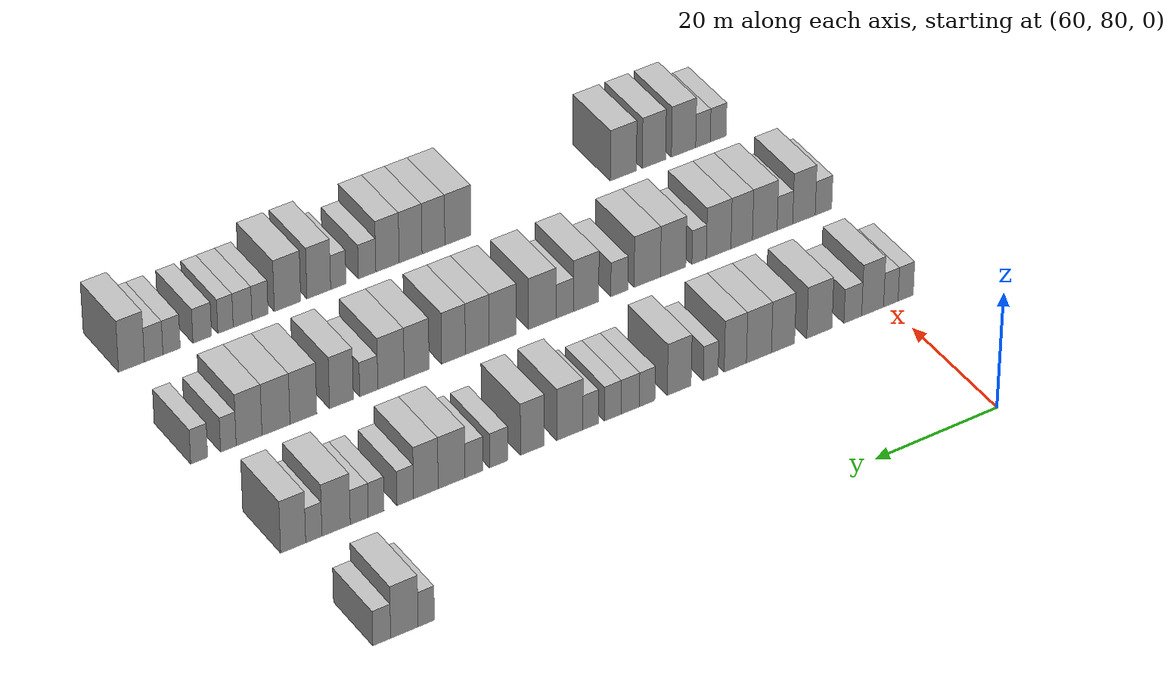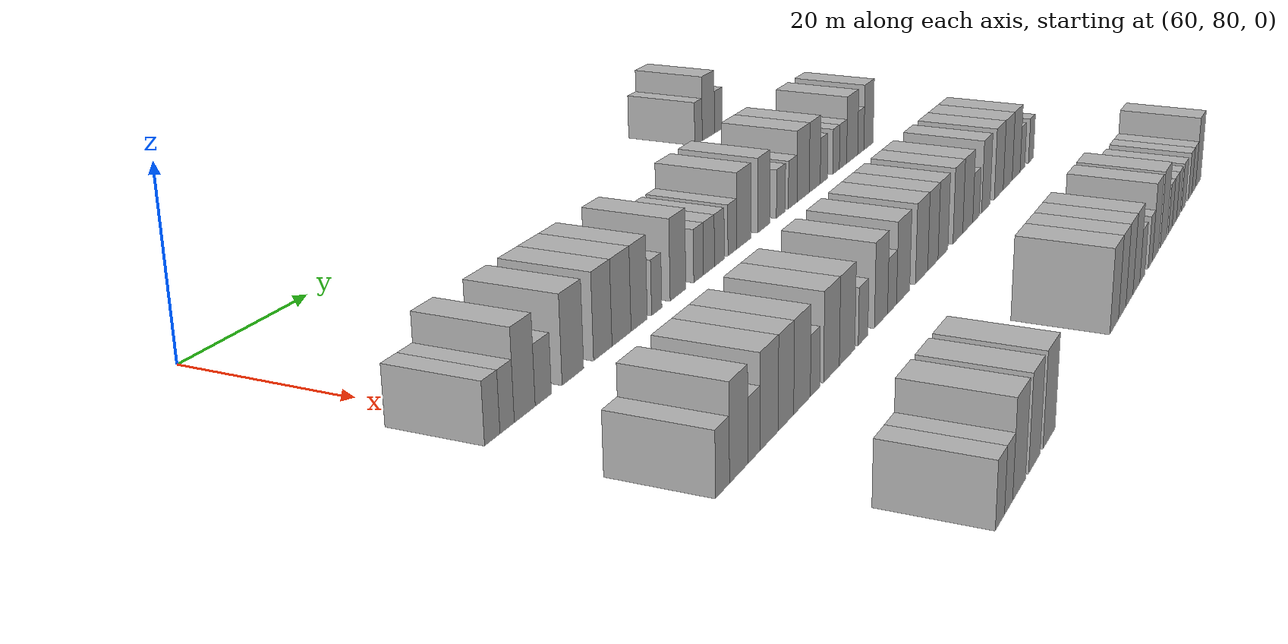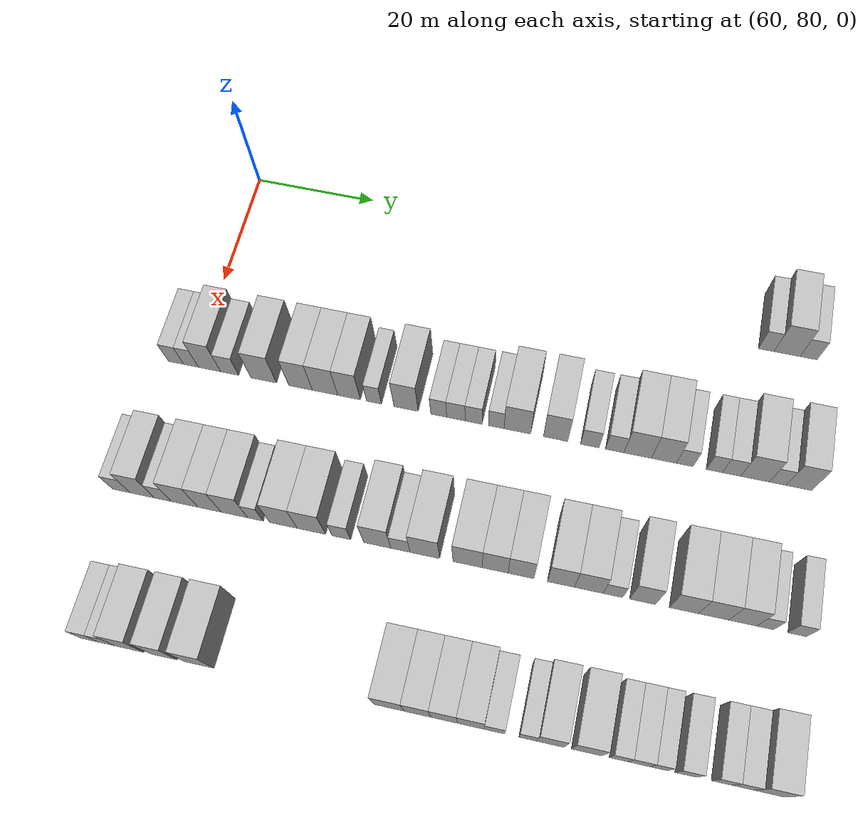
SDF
<sdf version="1.6">
 <world name="default">
  <model name="building_527">
   <static>1</static>
   <pose>69.0000 168.3057 0 0.000000 0.000000 0.000000</pose>
   <link name="link">
    <pose>0 0 3.00 0 0 0</pose>
    <collision name="collision"><geometry><box><size>10.0000 2.4869 6.0000</size></box></geometry></collision>
    <visual name="visual">
     <cast_shadows>0</cast_shadows>
     <geometry><box><size>10.0000 2.4869 6.0000</size></box></geometry>
     <material>
      <script>
       <uri>model://HANNAS_wall/materials/scripts</uri>
       <uri>model://HANNAS_wall/materials/textures</uri>
       <name>vrc/HANNAS_wall</name>
      </script>
     </material>
    </visual>
   </link>
  </model>
  <model name="building_528">
   <static>1</static>
   <pose>69.0000 171.6287 0 0.000000 0.000000 0.000000</pose>
   <link name="link">
    <pose>0 0 4.50 0 0 0</pose>
    <collision name="collision"><geometry><box><size>10.0000 4.1592 9.0000</size></box></geometry></collision>
    <visual name="visual">
     <cast_shadows>0</cast_shadows>
     <geometry><box><size>10.0000 4.1592 9.0000</size></box></geometry>
     <material>
      <script>
       <uri>model://HANNAS_wall/materials/scripts</uri>
       <uri>model://HANNAS_wall/materials/textures</uri>
       <name>vrc/HANNAS_wall</name>
      </script>
     </material>
    </visual>
   </link>
  </model>
  <model name="building_529">
   <static>1</static>
   <pose>69.0000 175.0570 0 0.000000 0.000000 0.000000</pose>
   <link name="link">
    <pose>0 0 3.00 0 0 0</pose>
    <collision name="collision"><geometry><box><size>10.0000 2.6973 6.0000</size></box></geometry></collision>
    <visual name="visual">
     <cast_shadows>0</cast_shadows>
     <geometry><box><size>10.0000 2.6973 6.0000</size></box></geometry>
     <material>
      <script>
       <uri>model://HANNAS_wall/materials/scripts</uri>
       <uri>model://HANNAS_wall/materials/textures</uri>
       <name>vrc/HANNAS_wall</name>
      </script>
     </material>
    </visual>
   </link>
  </model>
  <model name="building_686">
   <static>1</static>
   <pose>91.0000 77.1008 0 0.000000 0.000000 0.000000</pose>
   <link name="link">
    <pose>0 0 3.00 0 0 0</pose>
    <collision name="collision"><geometry><box><size>10.0000 2.5557 6.0000</size></box></geometry></collision>
    <visual name="visual">
     <cast_shadows>0</cast_shadows>
     <geometry><box><size>10.0000 2.5557 6.0000</size></box></geometry>
     <material>
      <script>
       <uri>model://HANNAS_wall/materials/scripts</uri>
       <uri>model://HANNAS_wall/materials/textures</uri>
       <name>vrc/HANNAS_wall</name>
      </script>
     </material>
    </visual>
   </link>
  </model>
  <model name="building_687">
   <static>1</static>
   <pose>91.0000 79.5977 0 0.000000 0.000000 0.000000</pose>
   <link name="link">
    <pose>0 0 3.00 0 0 0</pose>
    <collision name="collision"><geometry><box><size>10.0000 2.4380 6.0000</size></box></geometry></collision>
    <visual name="visual">
     <cast_shadows>0</cast_shadows>
     <geometry><box><size>10.0000 2.4380 6.0000</size></box></geometry>
     <material>
      <script>
       <uri>model://HANNAS_wall/materials/scripts</uri>
       <uri>model://HANNAS_wall/materials/textures</uri>
       <name>vrc/HANNAS_wall</name>
      </script>
     </material>
    </visual>
   </link>
  </model>
  <model name="building_688">
   <static>1</static>
   <pose>91.0000 82.6555 0 0.000000 0.000000 0.000000</pose>
   <link name="link">
    <pose>0 0 4.50 0 0 0</pose>
    <collision name="collision"><geometry><box><size>10.0000 3.6777 9.0000</size></box></geometry></collision>
    <visual name="visual">
     <cast_shadows>0</cast_shadows>
     <geometry><box><size>10.0000 3.6777 9.0000</size></box></geometry>
     <material>
      <script>
       <uri>model://HANNAS_wall/materials/scripts</uri>
       <uri>model://HANNAS_wall/materials/textures</uri>
       <name>vrc/HANNAS_wall</name>
      </script>
     </material>
    </visual>
   </link>
  </model>
  <model name="building_689">
   <static>1</static>
   <pose>91.0000 85.9803 0 0.000000 0.000000 0.000000</pose>
   <link name="link">
    <pose>0 0 3.00 0 0 0</pose>
    <collision name="collision"><geometry><box><size>10.0000 2.9718 6.0000</size></box></geometry></collision>
    <visual name="visual">
     <cast_shadows>0</cast_shadows>
     <geometry><box><size>10.0000 2.9718 6.0000</size></box></geometry>
     <material>
      <script>
       <uri>model://HANNAS_wall/materials/scripts</uri>
       <uri>model://HANNAS_wall/materials/textures</uri>
       <name>vrc/HANNAS_wall</name>
      </script>
     </material>
    </visual>
   </link>
  </model>
  <model name="building_690">
   <static>1</static>
   <pose>91.0000 91.5676 0 0.000000 0.000000 0.000000</pose>
   <link name="link">
    <pose>0 0 4.50 0 0 0</pose>
    <collision name="collision"><geometry><box><size>10.0000 4.2027 9.0000</size></box></geometry></collision>
    <visual name="visual">
     <cast_shadows>0</cast_shadows>
     <geometry><box><size>10.0000 4.2027 9.0000</size></box></geometry>
     <material>
      <script>
       <uri>model://HANNAS_wall/materials/scripts</uri>
       <uri>model://HANNAS_wall/materials/textures</uri>
       <name>vrc/HANNAS_wall</name>
      </script>
     </material>
    </visual>
   </link>
  </model>
  <model name="building_691">
   <static>1</static>
   <pose>91.0000 97.5886 0 0.000000 0.000000 0.000000</pose>
   <link name="link">
    <pose>0 0 4.50 0 0 0</pose>
    <collision name="collision"><geometry><box><size>10.0000 3.8395 9.0000</size></box></geometry></collision>
    <visual name="visual">
     <cast_shadows>0</cast_shadows>
     <geometry><box><size>10.0000 3.8395 9.0000</size></box></geometry>
     <material>
      <script>
       <uri>model://HANNAS_wall/materials/scripts</uri>
       <uri>model://HANNAS_wall/materials/textures</uri>
       <name>vrc/HANNAS_wall</name>
      </script>
     </material>
    </visual>
   </link>
  </model>
  <model name="building_692">
   <static>1</static>
   <pose>91.0000 101.5713 0 0.000000 0.000000 0.000000</pose>
   <link name="link">
    <pose>0 0 4.50 0 0 0</pose>
    <collision name="collision"><geometry><box><size>10.0000 4.1258 9.0000</size></box></geometry></collision>
    <visual name="visual">
     <cast_shadows>0</cast_shadows>
     <geometry><box><size>10.0000 4.1258 9.0000</size></box></geometry>
     <material>
      <script>
       <uri>model://HANNAS_wall/materials/scripts</uri>
       <uri>model://HANNAS_wall/materials/textures</uri>
       <name>vrc/HANNAS_wall</name>
      </script>
     </material>
    </visual>
   </link>
  </model>
  <model name="building_693">
   <static>1</static>
   <pose>91.0000 105.4553 0 0.000000 0.000000 0.000000</pose>
   <link name="link">
    <pose>0 0 4.50 0 0 0</pose>
    <collision name="collision"><geometry><box><size>10.0000 3.6424 9.0000</size></box></geometry></collision>
    <visual name="visual">
     <cast_shadows>0</cast_shadows>
     <geometry><box><size>10.0000 3.6424 9.0000</size></box></geometry>
     <material>
      <script>
       <uri>model://HANNAS_wall/materials/scripts</uri>
       <uri>model://HANNAS_wall/materials/textures</uri>
       <name>vrc/HANNAS_wall</name>
      </script>
     </material>
    </visual>
   </link>
  </model>
  <model name="building_694">
   <static>1</static>
   <pose>91.0000 109.4793 0 0.000000 0.000000 0.000000</pose>
   <link name="link">
    <pose>0 0 3.00 0 0 0</pose>
    <collision name="collision"><geometry><box><size>10.0000 2.4055 6.0000</size></box></geometry></collision>
    <visual name="visual">
     <cast_shadows>0</cast_shadows>
     <geometry><box><size>10.0000 2.4055 6.0000</size></box></geometry>
     <material>
      <script>
       <uri>model://HANNAS_wall/materials/scripts</uri>
       <uri>model://HANNAS_wall/materials/textures</uri>
       <name>vrc/HANNAS_wall</name>
      </script>
     </material>
    </visual>
   </link>
  </model>
  <model name="building_695">
   <static>1</static>
   <pose>91.0000 114.6203 0 0.000000 0.000000 0.000000</pose>
   <link name="link">
    <pose>0 0 4.50 0 0 0</pose>
    <collision name="collision"><geometry><box><size>10.0000 3.8765 9.0000</size></box></geometry></collision>
    <visual name="visual">
     <cast_shadows>0</cast_shadows>
     <geometry><box><size>10.0000 3.8765 9.0000</size></box></geometry>
     <material>
      <script>
       <uri>model://HANNAS_wall/materials/scripts</uri>
       <uri>model://HANNAS_wall/materials/textures</uri>
       <name>vrc/HANNAS_wall</name>
      </script>
     </material>
    </visual>
   </link>
  </model>
  <model name="building_696">
   <static>1</static>
   <pose>91.0000 119.8176 0 0.000000 0.000000 0.000000</pose>
   <link name="link">
    <pose>0 0 3.00 0 0 0</pose>
    <collision name="collision"><geometry><box><size>10.0000 2.5181 6.0000</size></box></geometry></collision>
    <visual name="visual">
     <cast_shadows>0</cast_shadows>
     <geometry><box><size>10.0000 2.5181 6.0000</size></box></geometry>
     <material>
      <script>
       <uri>model://HANNAS_wall/materials/scripts</uri>
       <uri>model://HANNAS_wall/materials/textures</uri>
       <name>vrc/HANNAS_wall</name>
      </script>
     </material>
    </visual>
   </link>
  </model>
  <model name="building_697">
   <static>1</static>
   <pose>91.0000 122.5498 0 0.000000 0.000000 0.000000</pose>
   <link name="link">
    <pose>0 0 3.00 0 0 0</pose>
    <collision name="collision"><geometry><box><size>10.0000 2.9464 6.0000</size></box></geometry></collision>
    <visual name="visual">
     <cast_shadows>0</cast_shadows>
     <geometry><box><size>10.0000 2.9464 6.0000</size></box></geometry>
     <material>
      <script>
       <uri>model://HANNAS_wall/materials/scripts</uri>
       <uri>model://HANNAS_wall/materials/textures</uri>
       <name>vrc/HANNAS_wall</name>
      </script>
     </material>
    </visual>
   </link>
  </model>
  <model name="building_698">
   <static>1</static>
   <pose>91.0000 125.3629 0 0.000000 0.000000 0.000000</pose>
   <link name="link">
    <pose>0 0 3.00 0 0 0</pose>
    <collision name="collision"><geometry><box><size>10.0000 2.6797 6.0000</size></box></geometry></collision>
    <visual name="visual">
     <cast_shadows>0</cast_shadows>
     <geometry><box><size>10.0000 2.6797 6.0000</size></box></geometry>
     <material>
      <script>
       <uri>model://HANNAS_wall/materials/scripts</uri>
       <uri>model://HANNAS_wall/materials/textures</uri>
       <name>vrc/HANNAS_wall</name>
      </script>
     </material>
    </visual>
   </link>
  </model>
  <model name="building_699">
   <static>1</static>
   <pose>91.0000 128.9342 0 0.000000 0.000000 0.000000</pose>
   <link name="link">
    <pose>0 0 3.00 0 0 0</pose>
    <collision name="collision"><geometry><box><size>10.0000 2.4628 6.0000</size></box></geometry></collision>
    <visual name="visual">
     <cast_shadows>0</cast_shadows>
     <geometry><box><size>10.0000 2.4628 6.0000</size></box></geometry>
     <material>
      <script>
       <uri>model://HANNAS_wall/materials/scripts</uri>
       <uri>model://HANNAS_wall/materials/textures</uri>
       <name>vrc/HANNAS_wall</name>
      </script>
     </material>
    </visual>
   </link>
  </model>
  <model name="building_700">
   <static>1</static>
   <pose>91.0000 132.2552 0 0.000000 0.000000 0.000000</pose>
   <link name="link">
    <pose>0 0 4.50 0 0 0</pose>
    <collision name="collision"><geometry><box><size>10.0000 4.1792 9.0000</size></box></geometry></collision>
    <visual name="visual">
     <cast_shadows>0</cast_shadows>
     <geometry><box><size>10.0000 4.1792 9.0000</size></box></geometry>
     <material>
      <script>
       <uri>model://HANNAS_wall/materials/scripts</uri>
       <uri>model://HANNAS_wall/materials/textures</uri>
       <name>vrc/HANNAS_wall</name>
      </script>
     </material>
    </visual>
   </link>
  </model>
  <model name="building_701">
   <static>1</static>
   <pose>91.0000 138.2323 0 0.000000 0.000000 0.000000</pose>
   <link name="link">
    <pose>0 0 4.50 0 0 0</pose>
    <collision name="collision"><geometry><box><size>10.0000 3.7750 9.0000</size></box></geometry></collision>
    <visual name="visual">
     <cast_shadows>0</cast_shadows>
     <geometry><box><size>10.0000 3.7750 9.0000</size></box></geometry>
     <material>
      <script>
       <uri>model://HANNAS_wall/materials/scripts</uri>
       <uri>model://HANNAS_wall/materials/textures</uri>
       <name>vrc/HANNAS_wall</name>
      </script>
     </material>
    </visual>
   </link>
  </model>
  <model name="building_702">
   <static>1</static>
   <pose>91.0000 143.5589 0 0.000000 0.000000 0.000000</pose>
   <link name="link">
    <pose>0 0 3.00 0 0 0</pose>
    <collision name="collision"><geometry><box><size>10.0000 2.8782 6.0000</size></box></geometry></collision>
    <visual name="visual">
     <cast_shadows>0</cast_shadows>
     <geometry><box><size>10.0000 2.8782 6.0000</size></box></geometry>
     <material>
      <script>
       <uri>model://HANNAS_wall/materials/scripts</uri>
       <uri>model://HANNAS_wall/materials/textures</uri>
       <name>vrc/HANNAS_wall</name>
      </script>
     </material>
    </visual>
   </link>
  </model>
  <model name="building_703">
   <static>1</static>
   <pose>91.0000 147.4248 0 0.000000 0.000000 0.000000</pose>
   <link name="link">
    <pose>0 0 3.00 0 0 0</pose>
    <collision name="collision"><geometry><box><size>10.0000 2.8537 6.0000</size></box></geometry></collision>
    <visual name="visual">
     <cast_shadows>0</cast_shadows>
     <geometry><box><size>10.0000 2.8537 6.0000</size></box></geometry>
     <material>
      <script>
       <uri>model://HANNAS_wall/materials/scripts</uri>
       <uri>model://HANNAS_wall/materials/textures</uri>
       <name>vrc/HANNAS_wall</name>
      </script>
     </material>
    </visual>
   </link>
  </model>
  <model name="building_704">
   <static>1</static>
   <pose>91.0000 150.9583 0 0.000000 0.000000 0.000000</pose>
   <link name="link">
    <pose>0 0 4.50 0 0 0</pose>
    <collision name="collision"><geometry><box><size>10.0000 4.2132 9.0000</size></box></geometry></collision>
    <visual name="visual">
     <cast_shadows>0</cast_shadows>
     <geometry><box><size>10.0000 4.2132 9.0000</size></box></geometry>
     <material>
      <script>
       <uri>model://HANNAS_wall/materials/scripts</uri>
       <uri>model://HANNAS_wall/materials/textures</uri>
       <name>vrc/HANNAS_wall</name>
      </script>
     </material>
    </visual>
   </link>
  </model>
  <model name="building_705">
   <static>1</static>
   <pose>91.0000 154.9866 0 0.000000 0.000000 0.000000</pose>
   <link name="link">
    <pose>0 0 4.50 0 0 0</pose>
    <collision name="collision"><geometry><box><size>10.0000 3.8434 9.0000</size></box></geometry></collision>
    <visual name="visual">
     <cast_shadows>0</cast_shadows>
     <geometry><box><size>10.0000 3.8434 9.0000</size></box></geometry>
     <material>
      <script>
       <uri>model://HANNAS_wall/materials/scripts</uri>
       <uri>model://HANNAS_wall/materials/textures</uri>
       <name>vrc/HANNAS_wall</name>
      </script>
     </material>
    </visual>
   </link>
  </model>
  <model name="building_706">
   <static>1</static>
   <pose>91.0000 158.1981 0 0.000000 0.000000 0.000000</pose>
   <link name="link">
    <pose>0 0 3.00 0 0 0</pose>
    <collision name="collision"><geometry><box><size>10.0000 2.5796 6.0000</size></box></geometry></collision>
    <visual name="visual">
     <cast_shadows>0</cast_shadows>
     <geometry><box><size>10.0000 2.5796 6.0000</size></box></geometry>
     <material>
      <script>
       <uri>model://HANNAS_wall/materials/scripts</uri>
       <uri>model://HANNAS_wall/materials/textures</uri>
       <name>vrc/HANNAS_wall</name>
      </script>
     </material>
    </visual>
   </link>
  </model>
  <model name="building_707">
   <static>1</static>
   <pose>91.0000 162.7180 0 0.000000 0.000000 0.000000</pose>
   <link name="link">
    <pose>0 0 3.00 0 0 0</pose>
    <collision name="collision"><geometry><box><size>10.0000 2.4602 6.0000</size></box></geometry></collision>
    <visual name="visual">
     <cast_shadows>0</cast_shadows>
     <geometry><box><size>10.0000 2.4602 6.0000</size></box></geometry>
     <material>
      <script>
       <uri>model://HANNAS_wall/materials/scripts</uri>
       <uri>model://HANNAS_wall/materials/textures</uri>
       <name>vrc/HANNAS_wall</name>
      </script>
     </material>
    </visual>
   </link>
  </model>
  <model name="building_708">
   <static>1</static>
   <pose>91.0000 165.3402 0 0.000000 0.000000 0.000000</pose>
   <link name="link">
    <pose>0 0 3.00 0 0 0</pose>
    <collision name="collision"><geometry><box><size>10.0000 2.7844 6.0000</size></box></geometry></collision>
    <visual name="visual">
     <cast_shadows>0</cast_shadows>
     <geometry><box><size>10.0000 2.7844 6.0000</size></box></geometry>
     <material>
      <script>
       <uri>model://HANNAS_wall/materials/scripts</uri>
       <uri>model://HANNAS_wall/materials/textures</uri>
       <name>vrc/HANNAS_wall</name>
      </script>
     </material>
    </visual>
   </link>
  </model>
  <model name="building_709">
   <static>1</static>
   <pose>91.0000 168.9085 0 0.000000 0.000000 0.000000</pose>
   <link name="link">
    <pose>0 0 4.50 0 0 0</pose>
    <collision name="collision"><geometry><box><size>10.0000 4.3522 9.0000</size></box></geometry></collision>
    <visual name="visual">
     <cast_shadows>0</cast_shadows>
     <geometry><box><size>10.0000 4.3522 9.0000</size></box></geometry>
     <material>
      <script>
       <uri>model://HANNAS_wall/materials/scripts</uri>
       <uri>model://HANNAS_wall/materials/textures</uri>
       <name>vrc/HANNAS_wall</name>
      </script>
     </material>
    </visual>
   </link>
  </model>
  <model name="building_710">
   <static>1</static>
   <pose>91.0000 172.3345 0 0.000000 0.000000 0.000000</pose>
   <link name="link">
    <pose>0 0 3.00 0 0 0</pose>
    <collision name="collision"><geometry><box><size>10.0000 2.4998 6.0000</size></box></geometry></collision>
    <visual name="visual">
     <cast_shadows>0</cast_shadows>
     <geometry><box><size>10.0000 2.4998 6.0000</size></box></geometry>
     <material>
      <script>
       <uri>model://HANNAS_wall/materials/scripts</uri>
       <uri>model://HANNAS_wall/materials/textures</uri>
       <name>vrc/HANNAS_wall</name>
      </script>
     </material>
    </visual>
   </link>
  </model>
  <model name="building_711">
   <static>1</static>
   <pose>91.0000 175.5028 0 0.000000 0.000000 0.000000</pose>
   <link name="link">
    <pose>0 0 4.50 0 0 0</pose>
    <collision name="collision"><geometry><box><size>10.0000 3.8369 9.0000</size></box></geometry></collision>
    <visual name="visual">
     <cast_shadows>0</cast_shadows>
     <geometry><box><size>10.0000 3.8369 9.0000</size></box></geometry>
     <material>
      <script>
       <uri>model://HANNAS_wall/materials/scripts</uri>
       <uri>model://HANNAS_wall/materials/textures</uri>
       <name>vrc/HANNAS_wall</name>
      </script>
     </material>
    </visual>
   </link>
  </model>
  <model name="building_876">
   <static>1</static>
   <pose>113.0000 75.9384 0 0.000000 0.000000 0.000000</pose>
   <link name="link">
    <pose>0 0 3.00 0 0 0</pose>
    <collision name="collision"><geometry><box><size>10.0000 2.8120 6.0000</size></box></geometry></collision>
    <visual name="visual">
     <cast_shadows>0</cast_shadows>
     <geometry><box><size>10.0000 2.8120 6.0000</size></box></geometry>
     <material>
      <script>
       <uri>model://HANNAS_wall/materials/scripts</uri>
       <uri>model://HANNAS_wall/materials/textures</uri>
       <name>vrc/HANNAS_wall</name>
      </script>
     </material>
    </visual>
   </link>
  </model>
  <model name="building_877">
   <static>1</static>
   <pose>113.0000 79.2613 0 0.000000 0.000000 0.000000</pose>
   <link name="link">
    <pose>0 0 4.50 0 0 0</pose>
    <collision name="collision"><geometry><box><size>10.0000 3.8337 9.0000</size></box></geometry></collision>
    <visual name="visual">
     <cast_shadows>0</cast_shadows>
     <geometry><box><size>10.0000 3.8337 9.0000</size></box></geometry>
     <material>
      <script>
       <uri>model://HANNAS_wall/materials/scripts</uri>
       <uri>model://HANNAS_wall/materials/textures</uri>
       <name>vrc/HANNAS_wall</name>
      </script>
     </material>
    </visual>
   </link>
  </model>
  <model name="building_878">
   <static>1</static>
   <pose>113.0000 82.4940 0 0.000000 0.000000 0.000000</pose>
   <link name="link">
    <pose>0 0 3.00 0 0 0</pose>
    <collision name="collision"><geometry><box><size>10.0000 2.6317 6.0000</size></box></geometry></collision>
    <visual name="visual">
     <cast_shadows>0</cast_shadows>
     <geometry><box><size>10.0000 2.6317 6.0000</size></box></geometry>
     <material>
      <script>
       <uri>model://HANNAS_wall/materials/scripts</uri>
       <uri>model://HANNAS_wall/materials/textures</uri>
       <name>vrc/HANNAS_wall</name>
      </script>
     </material>
    </visual>
   </link>
  </model>
  <model name="building_879">
   <static>1</static>
   <pose>113.0000 85.8998 0 0.000000 0.000000 0.000000</pose>
   <link name="link">
    <pose>0 0 4.50 0 0 0</pose>
    <collision name="collision"><geometry><box><size>10.0000 4.1800 9.0000</size></box></geometry></collision>
    <visual name="visual">
     <cast_shadows>0</cast_shadows>
     <geometry><box><size>10.0000 4.1800 9.0000</size></box></geometry>
     <material>
      <script>
       <uri>model://HANNAS_wall/materials/scripts</uri>
       <uri>model://HANNAS_wall/materials/textures</uri>
       <name>vrc/HANNAS_wall</name>
      </script>
     </material>
    </visual>
   </link>
  </model>
  <model name="building_880">
   <static>1</static>
   <pose>113.0000 89.7984 0 0.000000 0.000000 0.000000</pose>
   <link name="link">
    <pose>0 0 4.50 0 0 0</pose>
    <collision name="collision"><geometry><box><size>10.0000 3.6172 9.0000</size></box></geometry></collision>
    <visual name="visual">
     <cast_shadows>0</cast_shadows>
     <geometry><box><size>10.0000 3.6172 9.0000</size></box></geometry>
     <material>
      <script>
       <uri>model://HANNAS_wall/materials/scripts</uri>
       <uri>model://HANNAS_wall/materials/textures</uri>
       <name>vrc/HANNAS_wall</name>
      </script>
     </material>
    </visual>
   </link>
  </model>
  <model name="building_881">
   <static>1</static>
   <pose>113.0000 93.6689 0 0.000000 0.000000 0.000000</pose>
   <link name="link">
    <pose>0 0 4.50 0 0 0</pose>
    <collision name="collision"><geometry><box><size>10.0000 4.1239 9.0000</size></box></geometry></collision>
    <visual name="visual">
     <cast_shadows>0</cast_shadows>
     <geometry><box><size>10.0000 4.1239 9.0000</size></box></geometry>
     <material>
      <script>
       <uri>model://HANNAS_wall/materials/scripts</uri>
       <uri>model://HANNAS_wall/materials/textures</uri>
       <name>vrc/HANNAS_wall</name>
      </script>
     </material>
    </visual>
   </link>
  </model>
  <model name="building_882">
   <static>1</static>
   <pose>113.0000 96.9372 0 0.000000 0.000000 0.000000</pose>
   <link name="link">
    <pose>0 0 3.00 0 0 0</pose>
    <collision name="collision"><geometry><box><size>10.0000 2.4126 6.0000</size></box></geometry></collision>
    <visual name="visual">
     <cast_shadows>0</cast_shadows>
     <geometry><box><size>10.0000 2.4126 6.0000</size></box></geometry>
     <material>
      <script>
       <uri>model://HANNAS_wall/materials/scripts</uri>
       <uri>model://HANNAS_wall/materials/textures</uri>
       <name>vrc/HANNAS_wall</name>
      </script>
     </material>
    </visual>
   </link>
  </model>
  <model name="building_883">
   <static>1</static>
   <pose>113.0000 101.2653 0 0.000000 0.000000 0.000000</pose>
   <link name="link">
    <pose>0 0 4.50 0 0 0</pose>
    <collision name="collision"><geometry><box><size>10.0000 4.2436 9.0000</size></box></geometry></collision>
    <visual name="visual">
     <cast_shadows>0</cast_shadows>
     <geometry><box><size>10.0000 4.2436 9.0000</size></box></geometry>
     <material>
      <script>
       <uri>model://HANNAS_wall/materials/scripts</uri>
       <uri>model://HANNAS_wall/materials/textures</uri>
       <name>vrc/HANNAS_wall</name>
      </script>
     </material>
    </visual>
   </link>
  </model>
  <model name="building_884">
   <static>1</static>
   <pose>113.0000 105.5713 0 0.000000 0.000000 0.000000</pose>
   <link name="link">
    <pose>0 0 4.50 0 0 0</pose>
    <collision name="collision"><geometry><box><size>10.0000 4.3684 9.0000</size></box></geometry></collision>
    <visual name="visual">
     <cast_shadows>0</cast_shadows>
     <geometry><box><size>10.0000 4.3684 9.0000</size></box></geometry>
     <material>
      <script>
       <uri>model://HANNAS_wall/materials/scripts</uri>
       <uri>model://HANNAS_wall/materials/textures</uri>
       <name>vrc/HANNAS_wall</name>
      </script>
     </material>
    </visual>
   </link>
  </model>
  <model name="building_885">
   <static>1</static>
   <pose>113.0000 110.1729 0 0.000000 0.000000 0.000000</pose>
   <link name="link">
    <pose>0 0 3.00 0 0 0</pose>
    <collision name="collision"><geometry><box><size>10.0000 2.8348 6.0000</size></box></geometry></collision>
    <visual name="visual">
     <cast_shadows>0</cast_shadows>
     <geometry><box><size>10.0000 2.8348 6.0000</size></box></geometry>
     <material>
      <script>
       <uri>model://HANNAS_wall/materials/scripts</uri>
       <uri>model://HANNAS_wall/materials/textures</uri>
       <name>vrc/HANNAS_wall</name>
      </script>
     </material>
    </visual>
   </link>
  </model>
  <model name="building_886">
   <static>1</static>
   <pose>113.0000 115.6486 0 0.000000 0.000000 0.000000</pose>
   <link name="link">
    <pose>0 0 4.50 0 0 0</pose>
    <collision name="collision"><geometry><box><size>10.0000 4.1167 9.0000</size></box></geometry></collision>
    <visual name="visual">
     <cast_shadows>0</cast_shadows>
     <geometry><box><size>10.0000 4.1167 9.0000</size></box></geometry>
     <material>
      <script>
       <uri>model://HANNAS_wall/materials/scripts</uri>
       <uri>model://HANNAS_wall/materials/textures</uri>
       <name>vrc/HANNAS_wall</name>
      </script>
     </material>
    </visual>
   </link>
  </model>
  <model name="building_887">
   <static>1</static>
   <pose>113.0000 119.1537 0 0.000000 0.000000 0.000000</pose>
   <link name="link">
    <pose>0 0 3.00 0 0 0</pose>
    <collision name="collision"><geometry><box><size>10.0000 2.8935 6.0000</size></box></geometry></collision>
    <visual name="visual">
     <cast_shadows>0</cast_shadows>
     <geometry><box><size>10.0000 2.8935 6.0000</size></box></geometry>
     <material>
      <script>
       <uri>model://HANNAS_wall/materials/scripts</uri>
       <uri>model://HANNAS_wall/materials/textures</uri>
       <name>vrc/HANNAS_wall</name>
      </script>
     </material>
    </visual>
   </link>
  </model>
  <model name="building_888">
   <static>1</static>
   <pose>113.0000 122.8261 0 0.000000 0.000000 0.000000</pose>
   <link name="link">
    <pose>0 0 4.50 0 0 0</pose>
    <collision name="collision"><geometry><box><size>10.0000 4.4512 9.0000</size></box></geometry></collision>
    <visual name="visual">
     <cast_shadows>0</cast_shadows>
     <geometry><box><size>10.0000 4.4512 9.0000</size></box></geometry>
     <material>
      <script>
       <uri>model://HANNAS_wall/materials/scripts</uri>
       <uri>model://HANNAS_wall/materials/textures</uri>
       <name>vrc/HANNAS_wall</name>
      </script>
     </material>
    </visual>
   </link>
  </model>
  <model name="building_889">
   <static>1</static>
   <pose>113.0000 129.2539 0 0.000000 0.000000 0.000000</pose>
   <link name="link">
    <pose>0 0 4.50 0 0 0</pose>
    <collision name="collision"><geometry><box><size>10.0000 4.4045 9.0000</size></box></geometry></collision>
    <visual name="visual">
     <cast_shadows>0</cast_shadows>
     <geometry><box><size>10.0000 4.4045 9.0000</size></box></geometry>
     <material>
      <script>
       <uri>model://HANNAS_wall/materials/scripts</uri>
       <uri>model://HANNAS_wall/materials/textures</uri>
       <name>vrc/HANNAS_wall</name>
      </script>
     </material>
    </visual>
   </link>
  </model>
  <model name="building_890">
   <static>1</static>
   <pose>113.0000 133.3706 0 0.000000 0.000000 0.000000</pose>
   <link name="link">
    <pose>0 0 4.50 0 0 0</pose>
    <collision name="collision"><geometry><box><size>10.0000 3.8288 9.0000</size></box></geometry></collision>
    <visual name="visual">
     <cast_shadows>0</cast_shadows>
     <geometry><box><size>10.0000 3.8288 9.0000</size></box></geometry>
     <material>
      <script>
       <uri>model://HANNAS_wall/materials/scripts</uri>
       <uri>model://HANNAS_wall/materials/textures</uri>
       <name>vrc/HANNAS_wall</name>
      </script>
     </material>
    </visual>
   </link>
  </model>
  <model name="building_891">
   <static>1</static>
   <pose>113.0000 137.1918 0 0.000000 0.000000 0.000000</pose>
   <link name="link">
    <pose>0 0 4.50 0 0 0</pose>
    <collision name="collision"><geometry><box><size>10.0000 3.8137 9.0000</size></box></geometry></collision>
    <visual name="visual">
     <cast_shadows>0</cast_shadows>
     <geometry><box><size>10.0000 3.8137 9.0000</size></box></geometry>
     <material>
      <script>
       <uri>model://HANNAS_wall/materials/scripts</uri>
       <uri>model://HANNAS_wall/materials/textures</uri>
       <name>vrc/HANNAS_wall</name>
      </script>
     </material>
    </visual>
   </link>
  </model>
  <model name="building_892">
   <static>1</static>
   <pose>113.0000 143.0850 0 0.000000 0.000000 0.000000</pose>
   <link name="link">
    <pose>0 0 4.50 0 0 0</pose>
    <collision name="collision"><geometry><box><size>10.0000 3.9727 9.0000</size></box></geometry></collision>
    <visual name="visual">
     <cast_shadows>0</cast_shadows>
     <geometry><box><size>10.0000 3.9727 9.0000</size></box></geometry>
     <material>
      <script>
       <uri>model://HANNAS_wall/materials/scripts</uri>
       <uri>model://HANNAS_wall/materials/textures</uri>
       <name>vrc/HANNAS_wall</name>
      </script>
     </material>
    </visual>
   </link>
  </model>
  <model name="building_893">
   <static>1</static>
   <pose>113.0000 147.1721 0 0.000000 0.000000 0.000000</pose>
   <link name="link">
    <pose>0 0 4.50 0 0 0</pose>
    <collision name="collision"><geometry><box><size>10.0000 4.2016 9.0000</size></box></geometry></collision>
    <visual name="visual">
     <cast_shadows>0</cast_shadows>
     <geometry><box><size>10.0000 4.2016 9.0000</size></box></geometry>
     <material>
      <script>
       <uri>model://HANNAS_wall/materials/scripts</uri>
       <uri>model://HANNAS_wall/materials/textures</uri>
       <name>vrc/HANNAS_wall</name>
      </script>
     </material>
    </visual>
   </link>
  </model>
  <model name="building_894">
   <static>1</static>
   <pose>113.0000 150.7143 0 0.000000 0.000000 0.000000</pose>
   <link name="link">
    <pose>0 0 3.00 0 0 0</pose>
    <collision name="collision"><geometry><box><size>10.0000 2.8829 6.0000</size></box></geometry></collision>
    <visual name="visual">
     <cast_shadows>0</cast_shadows>
     <geometry><box><size>10.0000 2.8829 6.0000</size></box></geometry>
     <material>
      <script>
       <uri>model://HANNAS_wall/materials/scripts</uri>
       <uri>model://HANNAS_wall/materials/textures</uri>
       <name>vrc/HANNAS_wall</name>
      </script>
     </material>
    </visual>
   </link>
  </model>
  <model name="building_895">
   <static>1</static>
   <pose>113.0000 155.0382 0 0.000000 0.000000 0.000000</pose>
   <link name="link">
    <pose>0 0 4.50 0 0 0</pose>
    <collision name="collision"><geometry><box><size>10.0000 3.7648 9.0000</size></box></geometry></collision>
    <visual name="visual">
     <cast_shadows>0</cast_shadows>
     <geometry><box><size>10.0000 3.7648 9.0000</size></box></geometry>
     <material>
      <script>
       <uri>model://HANNAS_wall/materials/scripts</uri>
       <uri>model://HANNAS_wall/materials/textures</uri>
       <name>vrc/HANNAS_wall</name>
      </script>
     </material>
    </visual>
   </link>
  </model>
  <model name="building_896">
   <static>1</static>
   <pose>113.0000 161.0263 0 0.000000 0.000000 0.000000</pose>
   <link name="link">
    <pose>0 0 4.50 0 0 0</pose>
    <collision name="collision"><geometry><box><size>10.0000 4.2114 9.0000</size></box></geometry></collision>
    <visual name="visual">
     <cast_shadows>0</cast_shadows>
     <geometry><box><size>10.0000 4.2114 9.0000</size></box></geometry>
     <material>
      <script>
       <uri>model://HANNAS_wall/materials/scripts</uri>
       <uri>model://HANNAS_wall/materials/textures</uri>
       <name>vrc/HANNAS_wall</name>
      </script>
     </material>
    </visual>
   </link>
  </model>
  <model name="building_897">
   <static>1</static>
   <pose>113.0000 165.3201 0 0.000000 0.000000 0.000000</pose>
   <link name="link">
    <pose>0 0 4.50 0 0 0</pose>
    <collision name="collision"><geometry><box><size>10.0000 4.3763 9.0000</size></box></geometry></collision>
    <visual name="visual">
     <cast_shadows>0</cast_shadows>
     <geometry><box><size>10.0000 4.3763 9.0000</size></box></geometry>
     <material>
      <script>
       <uri>model://HANNAS_wall/materials/scripts</uri>
       <uri>model://HANNAS_wall/materials/textures</uri>
       <name>vrc/HANNAS_wall</name>
      </script>
     </material>
    </visual>
   </link>
  </model>
  <model name="building_898">
   <static>1</static>
   <pose>113.0000 169.5178 0 0.000000 0.000000 0.000000</pose>
   <link name="link">
    <pose>0 0 4.50 0 0 0</pose>
    <collision name="collision"><geometry><box><size>10.0000 4.0190 9.0000</size></box></geometry></collision>
    <visual name="visual">
     <cast_shadows>0</cast_shadows>
     <geometry><box><size>10.0000 4.0190 9.0000</size></box></geometry>
     <material>
      <script>
       <uri>model://HANNAS_wall/materials/scripts</uri>
       <uri>model://HANNAS_wall/materials/textures</uri>
       <name>vrc/HANNAS_wall</name>
      </script>
     </material>
    </visual>
   </link>
  </model>
  <model name="building_899">
   <static>1</static>
   <pose>113.0000 172.7386 0 0.000000 0.000000 0.000000</pose>
   <link name="link">
    <pose>0 0 3.00 0 0 0</pose>
    <collision name="collision"><geometry><box><size>10.0000 2.4226 6.0000</size></box></geometry></collision>
    <visual name="visual">
     <cast_shadows>0</cast_shadows>
     <geometry><box><size>10.0000 2.4226 6.0000</size></box></geometry>
     <material>
      <script>
       <uri>model://HANNAS_wall/materials/scripts</uri>
       <uri>model://HANNAS_wall/materials/textures</uri>
       <name>vrc/HANNAS_wall</name>
      </script>
     </material>
    </visual>
   </link>
  </model>
  <model name="building_900">
   <static>1</static>
   <pose>113.0000 177.2625 0 0.000000 0.000000 0.000000</pose>
   <link name="link">
    <pose>0 0 3.00 0 0 0</pose>
    <collision name="collision"><geometry><box><size>10.0000 2.6251 6.0000</size></box></geometry></collision>
    <visual name="visual">
     <cast_shadows>0</cast_shadows>
     <geometry><box><size>10.0000 2.6251 6.0000</size></box></geometry>
     <material>
      <script>
       <uri>model://HANNAS_wall/materials/scripts</uri>
       <uri>model://HANNAS_wall/materials/textures</uri>
       <name>vrc/HANNAS_wall</name>
      </script>
     </material>
    </visual>
   </link>
  </model>
  <model name="building_1041">
   <static>1</static>
   <pose>135.0000 79.2276 0 0.000000 0.000000 0.000000</pose>
   <link name="link">
    <pose>0 0 3.00 0 0 0</pose>
    <collision name="collision"><geometry><box><size>10.0000 2.7254 6.0000</size></box></geometry></collision>
    <visual name="visual">
     <cast_shadows>0</cast_shadows>
     <geometry><box><size>10.0000 2.7254 6.0000</size></box></geometry>
     <material>
      <script>
       <uri>model://HANNAS_wall/materials/scripts</uri>
       <uri>model://HANNAS_wall/materials/textures</uri>
       <name>vrc/HANNAS_wall</name>
      </script>
     </material>
    </visual>
   </link>
  </model>
  <model name="building_1042">
   <static>1</static>
   <pose>135.0000 81.8391 0 0.000000 0.000000 0.000000</pose>
   <link name="link">
    <pose>0 0 3.00 0 0 0</pose>
    <collision name="collision"><geometry><box><size>10.0000 2.4976 6.0000</size></box></geometry></collision>
    <visual name="visual">
     <cast_shadows>0</cast_shadows>
     <geometry><box><size>10.0000 2.4976 6.0000</size></box></geometry>
     <material>
      <script>
       <uri>model://HANNAS_wall/materials/scripts</uri>
       <uri>model://HANNAS_wall/materials/textures</uri>
       <name>vrc/HANNAS_wall</name>
      </script>
     </material>
    </visual>
   </link>
  </model>
  <model name="building_1043">
   <static>1</static>
   <pose>135.0000 85.1588 0 0.000000 0.000000 0.000000</pose>
   <link name="link">
    <pose>0 0 4.50 0 0 0</pose>
    <collision name="collision"><geometry><box><size>10.0000 4.1418 9.0000</size></box></geometry></collision>
    <visual name="visual">
     <cast_shadows>0</cast_shadows>
     <geometry><box><size>10.0000 4.1418 9.0000</size></box></geometry>
     <material>
      <script>
       <uri>model://HANNAS_wall/materials/scripts</uri>
       <uri>model://HANNAS_wall/materials/textures</uri>
       <name>vrc/HANNAS_wall</name>
      </script>
     </material>
    </visual>
   </link>
  </model>
  <model name="building_1044">
   <static>1</static>
   <pose>135.0000 90.2124 0 0.000000 0.000000 0.000000</pose>
   <link name="link">
    <pose>0 0 4.50 0 0 0</pose>
    <collision name="collision"><geometry><box><size>10.0000 3.9654 9.0000</size></box></geometry></collision>
    <visual name="visual">
     <cast_shadows>0</cast_shadows>
     <geometry><box><size>10.0000 3.9654 9.0000</size></box></geometry>
     <material>
      <script>
       <uri>model://HANNAS_wall/materials/scripts</uri>
       <uri>model://HANNAS_wall/materials/textures</uri>
       <name>vrc/HANNAS_wall</name>
      </script>
     </material>
    </visual>
   </link>
  </model>
  <model name="building_1045">
   <static>1</static>
   <pose>135.0000 95.3951 0 0.000000 0.000000 0.000000</pose>
   <link name="link">
    <pose>0 0 4.50 0 0 0</pose>
    <collision name="collision"><geometry><box><size>10.0000 4.4001 9.0000</size></box></geometry></collision>
    <visual name="visual">
     <cast_shadows>0</cast_shadows>
     <geometry><box><size>10.0000 4.4001 9.0000</size></box></geometry>
     <material>
      <script>
       <uri>model://HANNAS_wall/materials/scripts</uri>
       <uri>model://HANNAS_wall/materials/textures</uri>
       <name>vrc/HANNAS_wall</name>
      </script>
     </material>
    </visual>
   </link>
  </model>
  <model name="building_1046">
   <static>1</static>
   <pose>135.0000 123.0052 0 0.000000 0.000000 0.000000</pose>
   <link name="link">
    <pose>0 0 4.50 0 0 0</pose>
    <collision name="collision"><geometry><box><size>10.0000 4.2733 9.0000</size></box></geometry></collision>
    <visual name="visual">
     <cast_shadows>0</cast_shadows>
     <geometry><box><size>10.0000 4.2733 9.0000</size></box></geometry>
     <material>
      <script>
       <uri>model://HANNAS_wall/materials/scripts</uri>
       <uri>model://HANNAS_wall/materials/textures</uri>
       <name>vrc/HANNAS_wall</name>
      </script>
     </material>
    </visual>
   </link>
  </model>
  <model name="building_1047">
   <static>1</static>
   <pose>135.0000 127.0165 0 0.000000 0.000000 0.000000</pose>
   <link name="link">
    <pose>0 0 4.50 0 0 0</pose>
    <collision name="collision"><geometry><box><size>10.0000 3.7493 9.0000</size></box></geometry></collision>
    <visual name="visual">
     <cast_shadows>0</cast_shadows>
     <geometry><box><size>10.0000 3.7493 9.0000</size></box></geometry>
     <material>
      <script>
       <uri>model://HANNAS_wall/materials/scripts</uri>
       <uri>model://HANNAS_wall/materials/textures</uri>
       <name>vrc/HANNAS_wall</name>
      </script>
     </material>
    </visual>
   </link>
  </model>
  <model name="building_1048">
   <static>1</static>
   <pose>135.0000 130.7589 0 0.000000 0.000000 0.000000</pose>
   <link name="link">
    <pose>0 0 4.50 0 0 0</pose>
    <collision name="collision"><geometry><box><size>10.0000 3.7355 9.0000</size></box></geometry></collision>
    <visual name="visual">
     <cast_shadows>0</cast_shadows>
     <geometry><box><size>10.0000 3.7355 9.0000</size></box></geometry>
     <material>
      <script>
       <uri>model://HANNAS_wall/materials/scripts</uri>
       <uri>model://HANNAS_wall/materials/textures</uri>
       <name>vrc/HANNAS_wall</name>
      </script>
     </material>
    </visual>
   </link>
  </model>
  <model name="building_1049">
   <static>1</static>
   <pose>135.0000 134.5242 0 0.000000 0.000000 0.000000</pose>
   <link name="link">
    <pose>0 0 4.50 0 0 0</pose>
    <collision name="collision"><geometry><box><size>10.0000 3.7951 9.0000</size></box></geometry></collision>
    <visual name="visual">
     <cast_shadows>0</cast_shadows>
     <geometry><box><size>10.0000 3.7951 9.0000</size></box></geometry>
     <material>
      <script>
       <uri>model://HANNAS_wall/materials/scripts</uri>
       <uri>model://HANNAS_wall/materials/textures</uri>
       <name>vrc/HANNAS_wall</name>
      </script>
     </material>
    </visual>
   </link>
  </model>
  <model name="building_1050">
   <static>1</static>
   <pose>135.0000 137.8376 0 0.000000 0.000000 0.000000</pose>
   <link name="link">
    <pose>0 0 3.00 0 0 0</pose>
    <collision name="collision"><geometry><box><size>10.0000 2.8316 6.0000</size></box></geometry></collision>
    <visual name="visual">
     <cast_shadows>0</cast_shadows>
     <geometry><box><size>10.0000 2.8316 6.0000</size></box></geometry>
     <material>
      <script>
       <uri>model://HANNAS_wall/materials/scripts</uri>
       <uri>model://HANNAS_wall/materials/textures</uri>
       <name>vrc/HANNAS_wall</name>
      </script>
     </material>
    </visual>
   </link>
  </model>
  <model name="building_1051">
   <static>1</static>
   <pose>135.0000 142.4979 0 0.000000 0.000000 0.000000</pose>
   <link name="link">
    <pose>0 0 3.00 0 0 0</pose>
    <collision name="collision"><geometry><box><size>10.0000 2.4889 6.0000</size></box></geometry></collision>
    <visual name="visual">
     <cast_shadows>0</cast_shadows>
     <geometry><box><size>10.0000 2.4889 6.0000</size></box></geometry>
     <material>
      <script>
       <uri>model://HANNAS_wall/materials/scripts</uri>
       <uri>model://HANNAS_wall/materials/textures</uri>
       <name>vrc/HANNAS_wall</name>
      </script>
     </material>
    </visual>
   </link>
  </model>
  <model name="building_1052">
   <static>1</static>
   <pose>135.0000 145.6482 0 0.000000 0.000000 0.000000</pose>
   <link name="link">
    <pose>0 0 4.50 0 0 0</pose>
    <collision name="collision"><geometry><box><size>10.0000 3.8117 9.0000</size></box></geometry></collision>
    <visual name="visual">
     <cast_shadows>0</cast_shadows>
     <geometry><box><size>10.0000 3.8117 9.0000</size></box></geometry>
     <material>
      <script>
       <uri>model://HANNAS_wall/materials/scripts</uri>
       <uri>model://HANNAS_wall/materials/textures</uri>
       <name>vrc/HANNAS_wall</name>
      </script>
     </material>
    </visual>
   </link>
  </model>
  <model name="building_1053">
   <static>1</static>
   <pose>135.0000 150.6733 0 0.000000 0.000000 0.000000</pose>
   <link name="link">
    <pose>0 0 4.50 0 0 0</pose>
    <collision name="collision"><geometry><box><size>10.0000 4.2384 9.0000</size></box></geometry></collision>
    <visual name="visual">
     <cast_shadows>0</cast_shadows>
     <geometry><box><size>10.0000 4.2384 9.0000</size></box></geometry>
     <material>
      <script>
       <uri>model://HANNAS_wall/materials/scripts</uri>
       <uri>model://HANNAS_wall/materials/textures</uri>
       <name>vrc/HANNAS_wall</name>
      </script>
     </material>
    </visual>
   </link>
  </model>
  <model name="building_1054">
   <static>1</static>
   <pose>135.0000 155.0793 0 0.000000 0.000000 0.000000</pose>
   <link name="link">
    <pose>0 0 3.00 0 0 0</pose>
    <collision name="collision"><geometry><box><size>10.0000 2.5736 6.0000</size></box></geometry></collision>
    <visual name="visual">
     <cast_shadows>0</cast_shadows>
     <geometry><box><size>10.0000 2.5736 6.0000</size></box></geometry>
     <material>
      <script>
       <uri>model://HANNAS_wall/materials/scripts</uri>
       <uri>model://HANNAS_wall/materials/textures</uri>
       <name>vrc/HANNAS_wall</name>
      </script>
     </material>
    </visual>
   </link>
  </model>
  <model name="building_1055">
   <static>1</static>
   <pose>135.0000 157.8616 0 0.000000 0.000000 0.000000</pose>
   <link name="link">
    <pose>0 0 3.00 0 0 0</pose>
    <collision name="collision"><geometry><box><size>10.0000 2.9910 6.0000</size></box></geometry></collision>
    <visual name="visual">
     <cast_shadows>0</cast_shadows>
     <geometry><box><size>10.0000 2.9910 6.0000</size></box></geometry>
     <material>
      <script>
       <uri>model://HANNAS_wall/materials/scripts</uri>
       <uri>model://HANNAS_wall/materials/textures</uri>
       <name>vrc/HANNAS_wall</name>
      </script>
     </material>
    </visual>
   </link>
  </model>
  <model name="building_1056">
   <static>1</static>
   <pose>135.0000 160.5725 0 0.000000 0.000000 0.000000</pose>
   <link name="link">
    <pose>0 0 3.00 0 0 0</pose>
    <collision name="collision"><geometry><box><size>10.0000 2.4307 6.0000</size></box></geometry></collision>
    <visual name="visual">
     <cast_shadows>0</cast_shadows>
     <geometry><box><size>10.0000 2.4307 6.0000</size></box></geometry>
     <material>
      <script>
       <uri>model://HANNAS_wall/materials/scripts</uri>
       <uri>model://HANNAS_wall/materials/textures</uri>
       <name>vrc/HANNAS_wall</name>
      </script>
     </material>
    </visual>
   </link>
  </model>
  <model name="building_1057">
   <static>1</static>
   <pose>135.0000 164.2610 0 0.000000 0.000000 0.000000</pose>
   <link name="link">
    <pose>0 0 3.00 0 0 0</pose>
    <collision name="collision"><geometry><box><size>10.0000 2.9463 6.0000</size></box></geometry></collision>
    <visual name="visual">
     <cast_shadows>0</cast_shadows>
     <geometry><box><size>10.0000 2.9463 6.0000</size></box></geometry>
     <material>
      <script>
       <uri>model://HANNAS_wall/materials/scripts</uri>
       <uri>model://HANNAS_wall/materials/textures</uri>
       <name>vrc/HANNAS_wall</name>
      </script>
     </material>
    </visual>
   </link>
  </model>
  <model name="building_1058">
   <static>1</static>
   <pose>135.0000 169.0961 0 0.000000 0.000000 0.000000</pose>
   <link name="link">
    <pose>0 0 3.00 0 0 0</pose>
    <collision name="collision"><geometry><box><size>10.0000 2.7238 6.0000</size></box></geometry></collision>
    <visual name="visual">
     <cast_shadows>0</cast_shadows>
     <geometry><box><size>10.0000 2.7238 6.0000</size></box></geometry>
     <material>
      <script>
       <uri>model://HANNAS_wall/materials/scripts</uri>
       <uri>model://HANNAS_wall/materials/textures</uri>
       <name>vrc/HANNAS_wall</name>
      </script>
     </material>
    </visual>
   </link>
  </model>
  <model name="building_1059">
   <static>1</static>
   <pose>135.0000 171.9155 0 0.000000 0.000000 0.000000</pose>
   <link name="link">
    <pose>0 0 3.00 0 0 0</pose>
    <collision name="collision"><geometry><box><size>10.0000 2.9149 6.0000</size></box></geometry></collision>
    <visual name="visual">
     <cast_shadows>0</cast_shadows>
     <geometry><box><size>10.0000 2.9149 6.0000</size></box></geometry>
     <material>
      <script>
       <uri>model://HANNAS_wall/materials/scripts</uri>
       <uri>model://HANNAS_wall/materials/textures</uri>
       <name>vrc/HANNAS_wall</name>
      </script>
     </material>
    </visual>
   </link>
  </model>
  <model name="building_1060">
   <static>1</static>
   <pose>135.0000 175.3967 0 0.000000 0.000000 0.000000</pose>
   <link name="link">
    <pose>0 0 4.50 0 0 0</pose>
    <collision name="collision"><geometry><box><size>10.0000 4.0476 9.0000</size></box></geometry></collision>
    <visual name="visual">
     <cast_shadows>0</cast_shadows>
     <geometry><box><size>10.0000 4.0476 9.0000</size></box></geometry>
     <material>
      <script>
       <uri>model://HANNAS_wall/materials/scripts</uri>
       <uri>model://HANNAS_wall/materials/textures</uri>
       <name>vrc/HANNAS_wall</name>
      </script>
     </material>
    </visual>
   </link>
  </model>
 </world>
</sdf>
